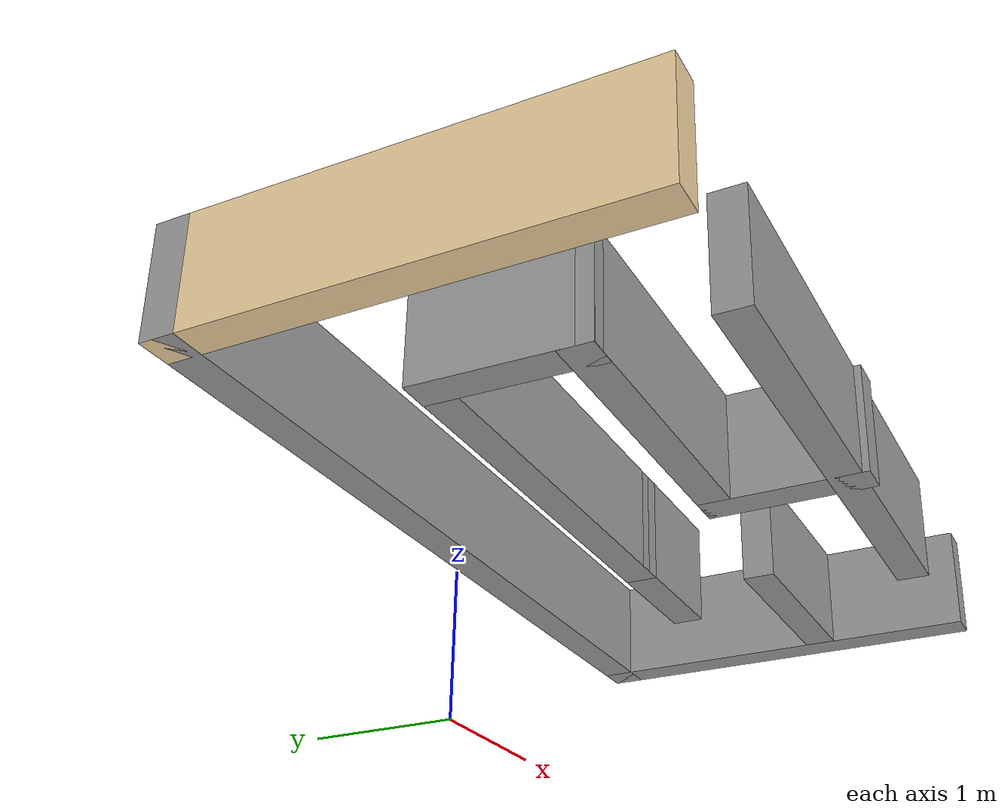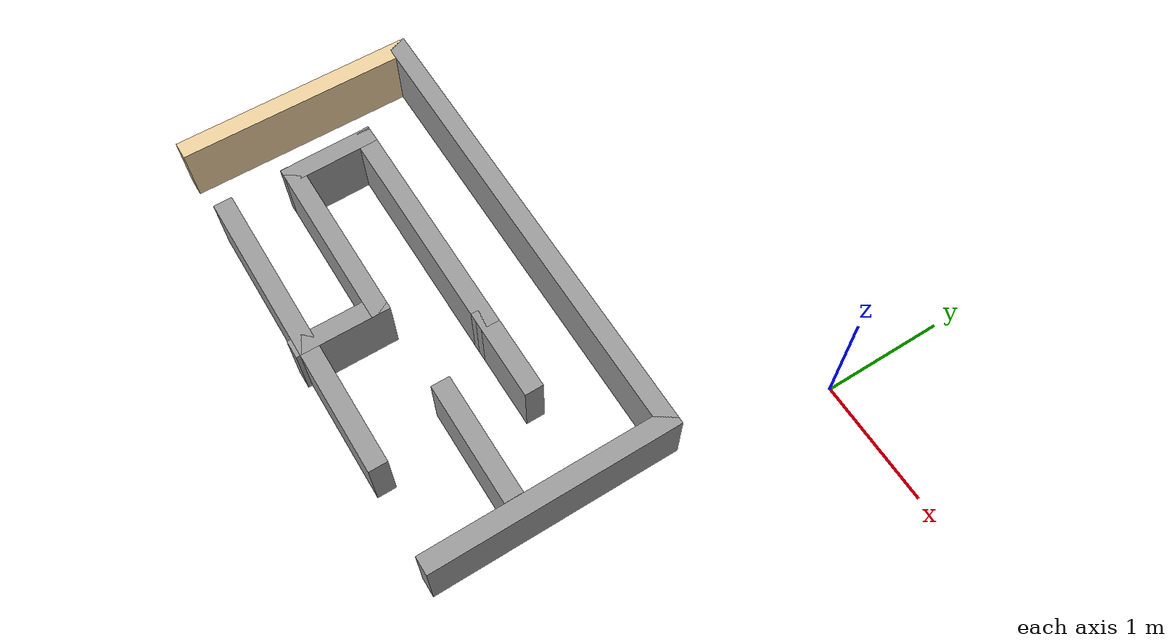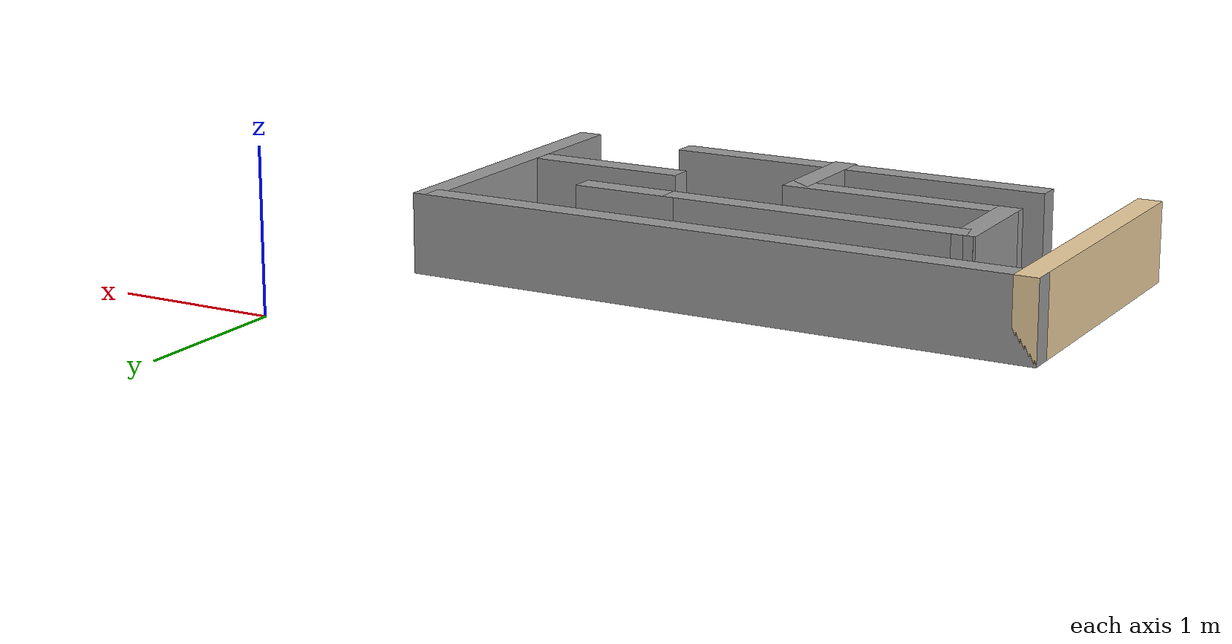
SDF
<?xml version='1.0'?>
<sdf version='1.7'>
  <model name='my_maze1'>
    <pose>-2.1 -1.6255 0 0 -0 0</pose>
    <link name='Wall_0'>
      <collision name='Wall_0_Collision'>
        <geometry>
          <box>
            <size>2 0.15 0.5</size>
          </box>
        </geometry>
        <pose>0 0 0.25 0 -0 0</pose>
      </collision>
      <visual name='Wall_0_Visual'>
        <pose>0 0 0.25 0 -0 0</pose>
        <geometry>
          <box>
            <size>2 0.15 0.5</size>
          </box>
        </geometry>
        <material>
          <script>
            <uri>file://media/materials/scripts/gazebo.material</uri>
            <name>Gazebo/Grey</name>
          </script>
          <ambient>0.921569 0.807843 0.615686 1</ambient>
        </material>
        <meta>
          <layer>0</layer>
        </meta>
      </visual>
      <pose>-2.025 -0.6035 0 0 -0 -1.5708</pose>
    </link>
    <link name='Wall_12'>
      <collision name='Wall_12_Collision'>
        <geometry>
          <box>
            <size>2 0.15 0.5</size>
          </box>
        </geometry>
        <pose>0 0 0.25 0 -0 0</pose>
      </collision>
      <visual name='Wall_12_Visual'>
        <pose>0 0 0.25 0 -0 0</pose>
        <geometry>
          <box>
            <size>2 0.15 0.5</size>
          </box>
        </geometry>
        <material>
          <script>
            <uri>file://media/materials/scripts/gazebo.material</uri>
            <name>Gazebo/Grey</name>
          </script>
          <ambient>1 1 1 1</ambient>
        </material>
        <meta>
          <layer>0</layer>
        </meta>
      </visual>
      <pose>-0.447 -0.337388 0 0 -0 -0.000122</pose>
    </link>
    <link name='Wall_15'>
      <collision name='Wall_15_Collision'>
        <geometry>
          <box>
            <size>1 0.15 0.5</size>
          </box>
        </geometry>
        <pose>0 0 0.25 0 -0 0</pose>
      </collision>
      <visual name='Wall_15_Visual'>
        <pose>0 0 0.25 0 -0 0</pose>
        <geometry>
          <box>
            <size>1 0.15 0.5</size>
          </box>
        </geometry>
        <material>
          <script>
            <uri>file://media/materials/scripts/gazebo.material</uri>
            <name>Gazebo/Grey</name>
          </script>
          <ambient>1 1 1 1</ambient>
        </material>
        <meta>
          <layer>0</layer>
        </meta>
      </visual>
      <pose>1.248 -0.8575 0 0 -0 0</pose>
    </link>
    <link name='Wall_17'>
      <collision name='Wall_17_Collision'>
        <geometry>
          <box>
            <size>0.763368 0.15 0.5</size>
          </box>
        </geometry>
        <pose>0 0 0.25 0 -0 0</pose>
      </collision>
      <visual name='Wall_17_Visual'>
        <pose>0 0 0.25 0 -0 0</pose>
        <geometry>
          <box>
            <size>0.763368 0.15 0.5</size>
          </box>
        </geometry>
        <material>
          <script>
            <uri>file://media/materials/scripts/gazebo.material</uri>
            <name>Gazebo/Grey</name>
          </script>
          <ambient>1 1 1 1</ambient>
        </material>
        <meta>
          <layer>0</layer>
        </meta>
      </visual>
      <pose>-1.37861 -0.643888 0 0 -0 1.59236</pose>
    </link>
    <link name='Wall_19'>
      <collision name='Wall_19_Collision'>
        <geometry>
          <box>
            <size>0.75 0.15 0.5</size>
          </box>
        </geometry>
        <pose>0 0 0.25 0 -0 0</pose>
      </collision>
      <visual name='Wall_19_Visual'>
        <pose>0 0 0.25 0 -0 0</pose>
        <geometry>
          <box>
            <size>0.75 0.15 0.5</size>
          </box>
        </geometry>
        <material>
          <script>
            <uri>file://media/materials/scripts/gazebo.material</uri>
            <name>Gazebo/Grey</name>
          </script>
          <ambient>1 1 1 1</ambient>
        </material>
        <meta>
          <layer>0</layer>
        </meta>
      </visual>
      <pose>0.778 -0.3375 0 0 -0 0</pose>
    </link>
    <link name='Wall_3'>
      <collision name='Wall_3_Collision'>
        <geometry>
          <box>
            <size>4 0.15 0.5</size>
          </box>
        </geometry>
        <pose>0 0 0.25 0 -0 0</pose>
      </collision>
      <visual name='Wall_3_Visual'>
        <pose>0 0 0.25 0 -0 0</pose>
        <geometry>
          <box>
            <size>4 0.15 0.5</size>
          </box>
        </geometry>
        <material>
          <script>
            <uri>file://media/materials/scripts/gazebo.material</uri>
            <name>Gazebo/Grey</name>
          </script>
          <ambient>1 1 1 1</ambient>
        </material>
        <meta>
          <layer>0</layer>
        </meta>
      </visual>
      <pose>-0.1 0.3215 0 0 -0 0</pose>
    </link>
    <link name='Wall_4'>
      <collision name='Wall_4_Collision'>
        <geometry>
          <box>
            <size>2 0.15 0.5</size>
          </box>
        </geometry>
        <pose>0 0 0.25 0 -0 0</pose>
      </collision>
      <visual name='Wall_4_Visual'>
        <pose>0 0 0.25 0 -0 0</pose>
        <geometry>
          <box>
            <size>2 0.15 0.5</size>
          </box>
        </geometry>
        <material>
          <script>
            <uri>file://media/materials/scripts/gazebo.material</uri>
            <name>Gazebo/Grey</name>
          </script>
          <ambient>1 1 1 1</ambient>
        </material>
        <meta>
          <layer>0</layer>
        </meta>
      </visual>
      <pose>1.825 -0.6035 0 0 -0 -1.5708</pose>
    </link>
    <link name='Wall_6'>
      <collision name='Wall_6_Collision'>
        <geometry>
          <box>
            <size>2.5 0.15 0.5</size>
          </box>
        </geometry>
        <pose>0 0 0.25 0 -0 0</pose>
      </collision>
      <visual name='Wall_6_Visual'>
        <pose>0 0 0.25 0 -0 0</pose>
        <geometry>
          <box>
            <size>2.5 0.15 0.5</size>
          </box>
        </geometry>
        <material>
          <script>
            <uri>file://media/materials/scripts/gazebo.material</uri>
            <name>Gazebo/Grey</name>
          </script>
          <ambient>1 1 1 1</ambient>
        </material>
        <meta>
          <layer>0</layer>
        </meta>
      </visual>
      <pose>-0.171 -1.5185 0 0 -0 0</pose>
    </link>
    <link name='Wall_8'>
      <collision name='Wall_8_Collision'>
        <geometry>
          <box>
            <size>1.5 0.15 0.5</size>
          </box>
        </geometry>
        <pose>0 0 0.25 0 -0 0</pose>
      </collision>
      <visual name='Wall_8_Visual'>
        <pose>0 0 0.25 0 -0 0</pose>
        <geometry>
          <box>
            <size>1.5 0.15 0.5</size>
          </box>
        </geometry>
        <material>
          <script>
            <uri>file://media/materials/scripts/gazebo.material</uri>
            <name>Gazebo/Grey</name>
          </script>
          <ambient>1 1 1 1</ambient>
        </material>
        <meta>
          <layer>0</layer>
        </meta>
      </visual>
      <pose>-0.697 -0.9505 0 0 -0 0</pose>
    </link>
    <link name='Wall_9'>
      <collision name='Wall_9_Collision'>
        <geometry>
          <box>
            <size>0.75 0.15 0.5</size>
          </box>
        </geometry>
        <pose>0 0 0.25 0 -0 0</pose>
      </collision>
      <visual name='Wall_9_Visual'>
        <pose>0 0 0.25 0 -0 0</pose>
        <geometry>
          <box>
            <size>0.75 0.15 0.5</size>
          </box>
        </geometry>
        <material>
          <script>
            <uri>file://media/materials/scripts/gazebo.material</uri>
            <name>Gazebo/Grey</name>
          </script>
          <ambient>1 1 1 1</ambient>
        </material>
        <meta>
          <layer>0</layer>
        </meta>
      </visual>
      <pose>-0.022 -1.2505 0 0 -0 -1.5708</pose>
    </link>
    <static>1</static>
  </model>
</sdf>
